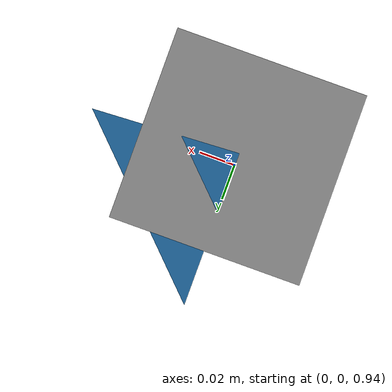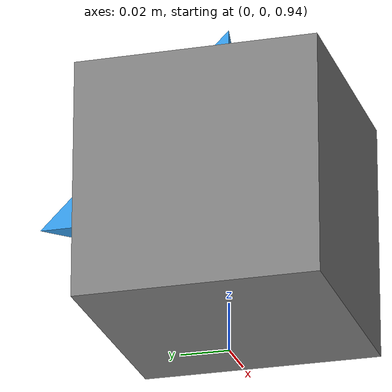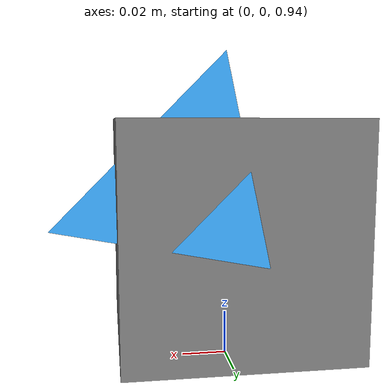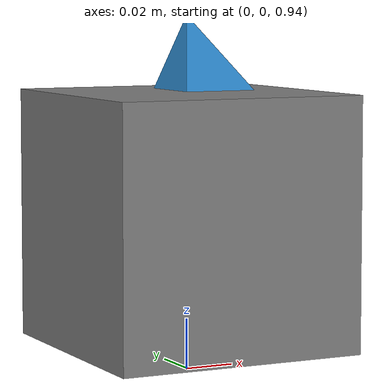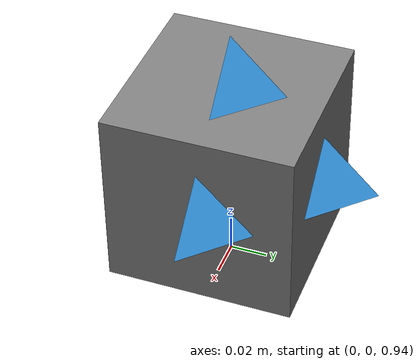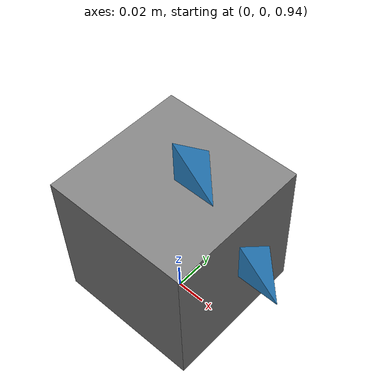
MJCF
<mujoco model="simple">
  <option timestep="0.01" gravity="0 0 -9.81"/>
  <asset>
    <mesh name="tetra" vertex="0 0 0  0.08 0 0  0 0.08 0  0 0 0.08"
          face="0 2 1  0 1 3  0 3 2  1 2 3"/>
  </asset>
  <worldbody>
    <body name="falling_box" pos="0 0 1">
      <freejoint/>
      <geom name="box" type="box" size="0.05 0.05 0.05" mass="1"/>
      <geom name="mesh_visual" type="mesh" mesh="tetra" mass="0"
            contype="0" conaffinity="0" rgba="0.2 0.6 0.9 1"/>
      <site name="box_force_site" pos="0 0 0" size="0.01"/>
    </body>
  </worldbody>
</mujoco>
